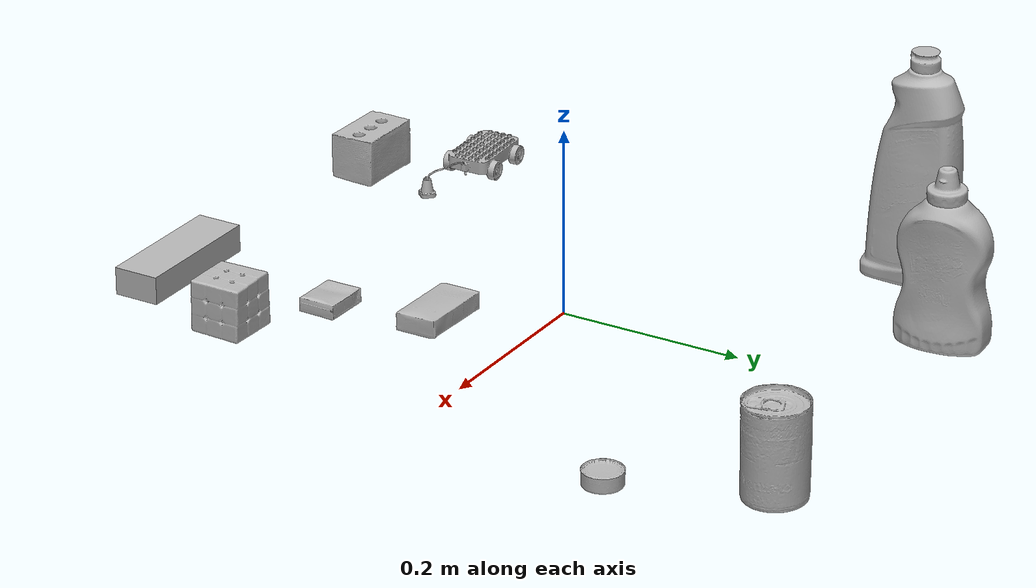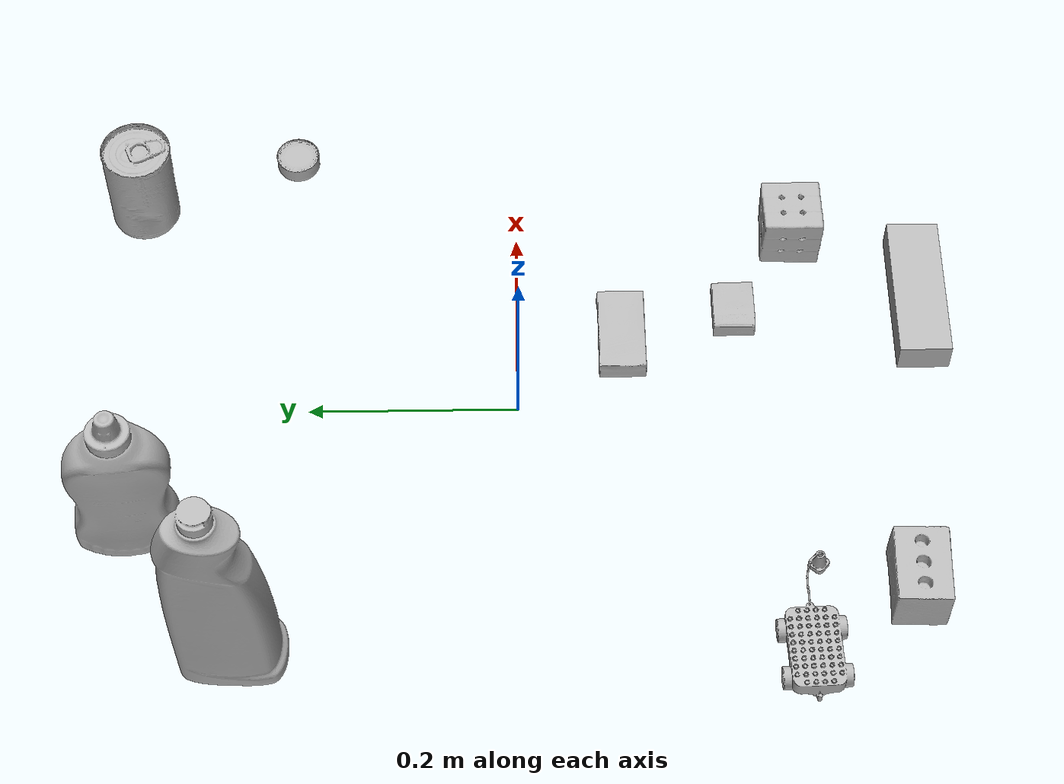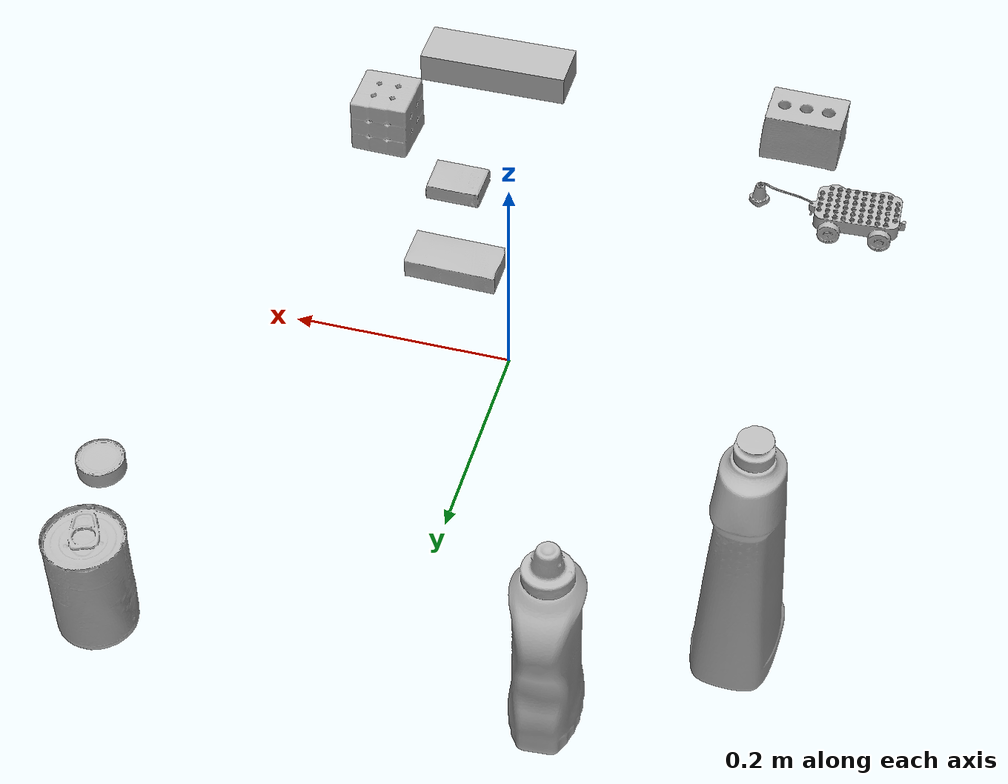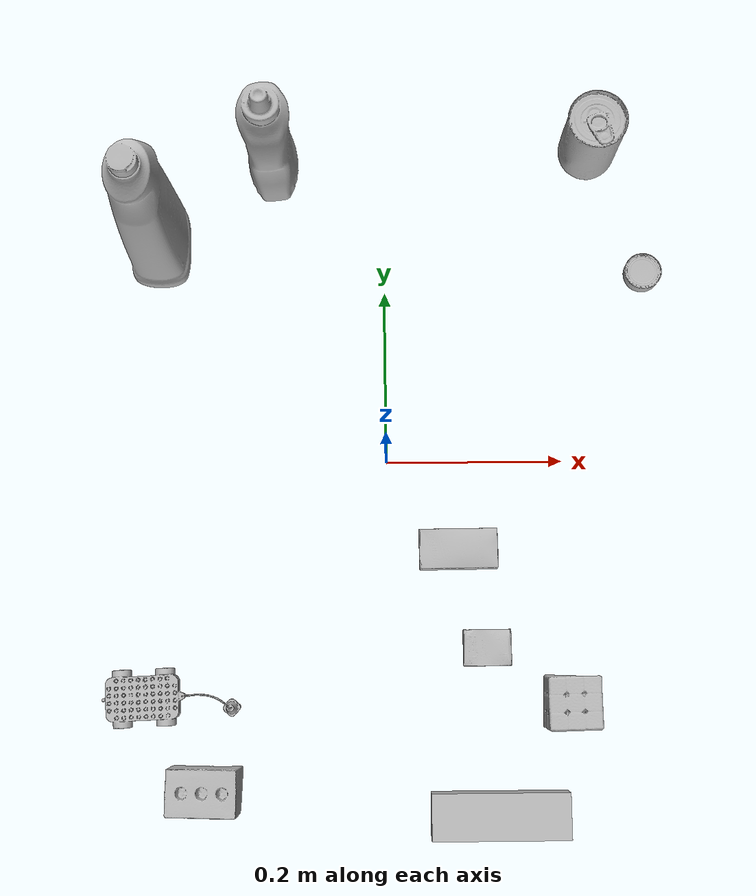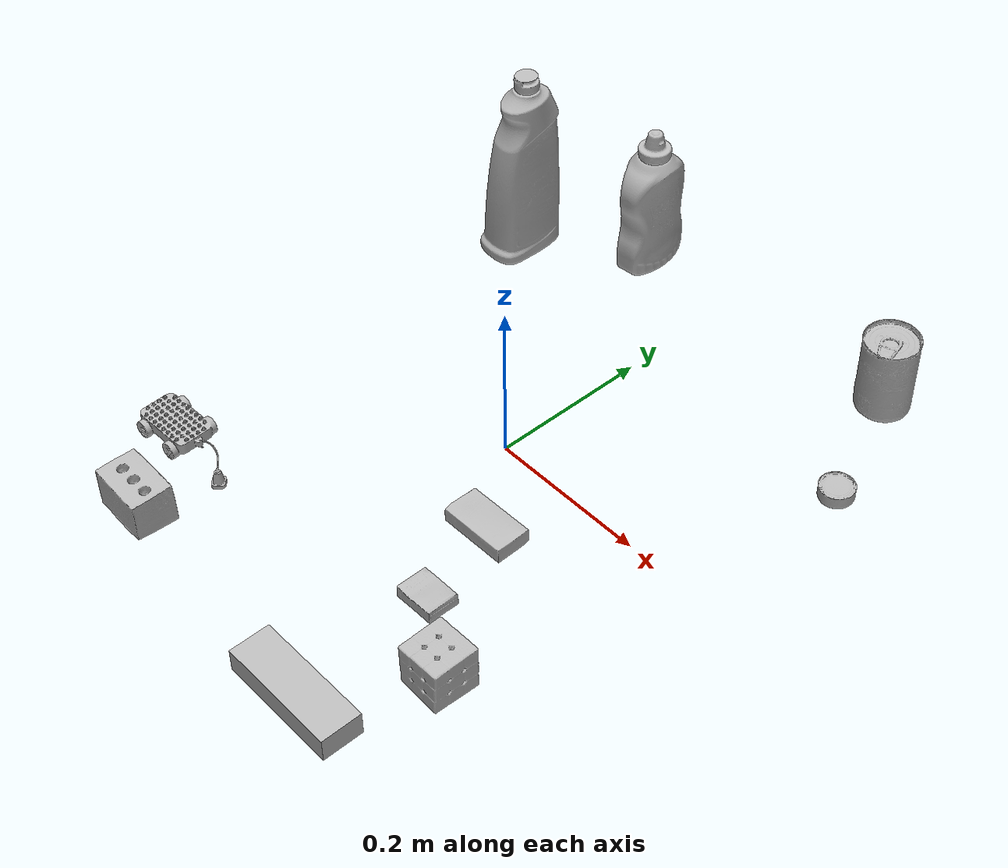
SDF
<?xml version="1.0" ?>
<sdf version="1.4">
  <world name="default">
    <light name="light1" type="point">
      <pose>0 0 1 0 0 0</pose>
      <diffuse>3 3 3 1</diffuse>
      <specular>3 3 3 1</specular>
    </light>
    <light name="light2" type="point">
      <pose>0 0.5 2 0 0 0</pose>
      <diffuse>1 1 1 1</diffuse>
      <specular>1 1 1 1</specular>
    </light>
    <light name="light3" type="point">
      <pose>0 0.5 2 0 0 0</pose>
      <diffuse>3 3 3 1</diffuse>
      <specular>3 3 3 1</specular>
    </light>
    <scene>
      <ambient>0.7 0.7 0.7</ambient>
    </scene>
    <model name="bottle1">
      <link name="link_bottle1">
        <collision name="default">
          <geometry>
            <mesh>
              <uri>model://bleach_cleanser/collision_meshes/collision.obj</uri>
              <scale>1.0 1.0 1.0</scale>
            </mesh>
          </geometry>
          <surface>
            <friction>
              <ode>
                <mu>0.5</mu>
                <mu2>0.5</mu2>
              </ode>
            </friction>
          </surface>
        </collision>
        <visual name="default">
          <geometry>
            <mesh>
              <uri>model://bleach_cleanser/visual_meshes/visual.dae</uri>
              <scale>1.0 1.0 1.0</scale>
            </mesh>
          </geometry>
        </visual>
        <inertial>
          <mass>1.2697166204452515</mass>
          <pose>0.00012193183647468686 0.003783883061259985 -0.02442161738872528 -0.07381670616315505 0.00042011510954057825 -0.0068750724928957506</pose>
          <inertia>
            <ixx>0.0061798943</ixx>
            <iyy>0.0057587572</iyy>
            <izz>0.0010566014</izz>
            <ixy>0</ixy>
            <ixz>0</ixz>
            <iyz>0</iyz>
          </inertia>
        </inertial>
      </link>
      <pose>-0.2598317563533783 0.2598607540130615 0.12578421831130981 -0.00020526324639732503 1.1878603807095203e-05 -0.013354069546375915</pose>
    </model>
    <model name="bottle2">
      <link name="link_bottle2">
        <collision name="default">
          <geometry>
            <mesh>
              <uri>model://mustard_bottle/collision_meshes/collision.obj</uri>
              <scale>1.0 1.0 1.0</scale>
            </mesh>
          </geometry>
          <surface>
            <friction>
              <ode>
                <mu>0.5</mu>
                <mu2>0.5</mu2>
              </ode>
            </friction>
          </surface>
        </collision>
        <visual name="default">
          <geometry>
            <mesh>
              <uri>model://mustard_bottle/visual_meshes/visual.dae</uri>
              <scale>1.0 1.0 1.0</scale>
            </mesh>
          </geometry>
        </visual>
        <inertial>
          <mass>0.7653017640113831</mass>
          <pose>0.000503245391882956 -0.00015647402324248105 -0.01747579500079155 0.0004182327658992807 0.0009465785893850277 0.024853714910462506</pose>
          <inertia>
            <ixx>0.0021251384</ixx>
            <iyy>0.0018646289</iyy>
            <izz>0.0005600813</izz>
            <ixy>0</ixy>
            <ixz>0</ixz>
            <iyz>0</iyz>
          </inertia>
        </inertial>
      </link>
      <pose>-0.13076108694076538 0.3597590923309326 0.09615199267864227 1.3273018211881367e-05 1.4551971329679461e-05 0.07881725724370076</pose>
    </model>
    <model name="toy1">
      <link name="link_toy1">
        <collision name="default">
          <geometry>
            <mesh>
              <uri>model://g_lego_duplo/collision_meshes/collision.obj</uri>
              <scale>0.5 0.5 0.5</scale>
            </mesh>
          </geometry>
          <surface>
            <friction>
              <ode>
                <mu>0.5</mu>
                <mu2>0.5</mu2>
              </ode>
            </friction>
          </surface>
        </collision>
        <visual name="default">
          <geometry>
            <mesh>
              <uri>model://g_lego_duplo/visual_meshes/visual.dae</uri>
              <scale>0.5 0.5 0.5</scale>
            </mesh>
          </geometry>
        </visual>
        <inertial>
          <mass>0.058442164212465286</mass>
          <pose>-0.025023842230439186 0.0008777315961197019 0.0019403378246352077 0.010962970283690966 0.0381082459421261 -0.09653034831594848</pose>
          <inertia>
            <ixx>2.1170836e-05</ixx>
            <iyy>6.4006235e-05</iyy>
            <izz>8.007422e-05</izz>
            <ixy>0</ixy>
            <ixz>0</ixz>
            <iyz>0</iyz>
          </inertia>
        </inertial>
      </link>
      <pose>-0.23957829177379608 -0.2618411183357239 0.014996832236647606 -6.198758167944936e-05 -0.003688328968005515 0.037527009774523494</pose>
    </model>
    <model name="toy2">
      <link name="link_toy2">
        <collision name="default">
          <geometry>
            <mesh>
              <uri>model://foam_brick/collision_meshes/collision.obj</uri>
              <scale>1.0 1.0 1.0</scale>
            </mesh>
          </geometry>
          <surface>
            <friction>
              <ode>
                <mu>0.5</mu>
                <mu2>0.5</mu2>
              </ode>
            </friction>
          </surface>
        </collision>
        <visual name="default">
          <geometry>
            <mesh>
              <uri>model://foam_brick/visual_meshes/visual.dae</uri>
              <scale>1.0 1.0 1.0</scale>
            </mesh>
          </geometry>
        </visual>
        <inertial>
          <mass>0.20487983524799347</mass>
          <pose>-0.0002522472059354186 0.0003458437859080732 -0.0002532101352699101 -0.2940200921298176 0.01727444945267686 -0.0007449878655710941</pose>
          <inertia>
            <ixx>8.9495355e-05</ixx>
            <iyy>0.0001428839</iyy>
            <izz>0.00014469978</izz>
            <ixy>0</ixy>
            <ixz>0</ixz>
            <iyz>0</iyz>
          </inertia>
        </inertial>
      </link>
      <pose>-0.19975629448890686 -0.3606002628803253 0.0259175393730402 0.013817562215463432 0.004276821971822236 -0.029549057047507328</pose>
    </model>
    <model name="can1">
      <link name="link_can1">
        <collision name="default">
          <geometry>
            <mesh>
              <uri>model://tuna_fish_can/collision_meshes/collision.obj</uri>
              <scale>0.5 0.5 0.5</scale>
            </mesh>
          </geometry>
          <surface>
            <friction>
              <ode>
                <mu>0.5</mu>
                <mu2>0.5</mu2>
              </ode>
            </friction>
          </surface>
        </collision>
        <visual name="default">
          <geometry>
            <mesh>
              <uri>model://tuna_fish_can/visual_meshes/visual.dae</uri>
              <scale>0.5 0.5 0.5</scale>
            </mesh>
          </geometry>
        </visual>
        <inertial>
          <mass>0.012491201050579548</mass>
          <pose>-2.036202567978762e-05 -7.256427124957554e-06 -0.0005269025568850338 -0.0017944782936896576 0.0001716245920406042 0.24054207470378652</pose>
          <inertia>
            <ixx>1.6888293e-06</ixx>
            <iyy>1.6817903e-06</iyy>
            <izz>2.889828e-06</izz>
            <ixy>0</ixy>
            <ixz>0</ixz>
            <iyz>0</iyz>
          </inertia>
        </inertial>
      </link>
      <pose>0.29997527599334717 0.220023050904274 0.00851999968290329 1.2334484780522406e-10 -3.105357674638783e-08 -0.011107031889412762</pose>
    </model>
    <model name="can2">
      <link name="link_can2">
        <collision name="default">
          <geometry>
            <mesh>
              <uri>model://tomato_soup_can/collision_meshes/collision.obj</uri>
              <scale>1.0 1.0 1.0</scale>
            </mesh>
          </geometry>
          <surface>
            <friction>
              <ode>
                <mu>0.5</mu>
                <mu2>0.5</mu2>
              </ode>
            </friction>
          </surface>
        </collision>
        <visual name="default">
          <geometry>
            <mesh>
              <uri>model://tomato_soup_can/visual_meshes/visual.dae</uri>
              <scale>1.0 1.0 1.0</scale>
            </mesh>
          </geometry>
        </visual>
        <inertial>
          <mass>0.1827235370874405</mass>
          <pose>0.00012652271834667772 0.00010805515921674669 -0.0017973986687138677 0.007020070640758328 0.00042299385100205743 -0.009903366123441316</pose>
          <inertia>
            <ixx>0.00020034082</ixx>
            <iyy>0.00019918295</iyy>
            <izz>0.00010383482</izz>
            <ixy>0</ixy>
            <ixz>0</ixz>
            <iyz>0</iyz>
          </inertia>
        </inertial>
      </link>
      <pose>0.23994599282741547 0.36999717354774475 0.05127398669719696 -5.833695746395945e-07 -7.847728714089707e-07 0.08966873869743346</pose>
    </model>
    <model name="box1">
      <link name="link_box1">
        <collision name="default">
          <geometry>
            <mesh>
              <uri>model://jenga/collision_meshes/collision.obj</uri>
              <scale>1.0 1.0 1.0</scale>
            </mesh>
          </geometry>
          <surface>
            <friction>
              <ode>
                <mu>0.5</mu>
                <mu2>0.5</mu2>
              </ode>
            </friction>
          </surface>
        </collision>
        <visual name="default">
          <geometry>
            <mesh>
              <uri>model://jenga/visual_meshes/visual.dae</uri>
              <scale>1.0 1.0 1.0</scale>
            </mesh>
          </geometry>
        </visual>
        <inertial>
          <mass>0.23032541573047638</mass>
          <pose>-2.502855807051674e-07 -0.00010250010382151231 -4.0923401684267446e-05 0.0 -7.342154049184251e-07 0.0</pose>
          <inertia>
            <ixx>6.3736625e-05</ixx>
            <iyy>0.00043187768</iyy>
            <izz>0.00046106614</izz>
            <ixy>0</ixy>
            <ixz>0</ixz>
            <iyz>0</iyz>
          </inertia>
        </inertial>
      </link>
      <pose>0.1200004443526268 -0.38989749550819397 0.014999995008111 5.577798631907959e-10 2.1140071339815267e-10 -1.3860237402235332e-07</pose>
    </model>
    <model name="box2">
      <link name="link_box2">
        <collision name="default">
          <geometry>
            <mesh>
              <uri>model://cracker_box/collision_meshes/collision.obj</uri>
              <scale>0.25 0.25 0.25</scale>
            </mesh>
          </geometry>
          <surface>
            <friction>
              <ode>
                <mu>0.5</mu>
                <mu2>0.5</mu2>
              </ode>
            </friction>
          </surface>
        </collision>
        <visual name="default">
          <geometry>
            <mesh>
              <uri>model://cracker_box/visual_meshes/visual.dae</uri>
              <scale>0.25 0.25 0.25</scale>
            </mesh>
          </geometry>
        </visual>
        <inertial>
          <mass>0.037928901612758636</mass>
          <pose>0.0002366034168517217 6.358561222441494e-05 -0.000425738311605528 -0.00031620771242973385 -0.011106489600347247 0.002546794536796529</pose>
          <inertia>
            <ixx>6.029637e-06</ixx>
            <iyy>9.956116e-06</iyy>
            <izz>1.420829e-05</izz>
            <ixy>0</ixy>
            <ixz>0</ixz>
            <iyz>0</iyz>
          </inertia>
        </inertial>
      </link>
      <pose>0.10993338376283646 -0.20984996855258942 0.009120451286435127 -0.011788914550587544 -0.007366515260040836 0.00012844504987506185</pose>
    </model>
    <model name="box3">
      <link name="link_box3">
        <collision name="default">
          <geometry>
            <mesh>
              <uri>model://sugar_box/collision_meshes/collision.obj</uri>
              <scale>0.5 0.5 0.5</scale>
            </mesh>
          </geometry>
          <surface>
            <friction>
              <ode>
                <mu>0.5</mu>
                <mu2>0.5</mu2>
              </ode>
            </friction>
          </surface>
        </collision>
        <visual name="default">
          <geometry>
            <mesh>
              <uri>model://sugar_box/visual_meshes/visual.dae</uri>
              <scale>0.5 0.5 0.5</scale>
            </mesh>
          </geometry>
        </visual>
        <inertial>
          <mass>0.11577744781970978</mass>
          <pose>0.0005171863595023751 1.9245549992774613e-05 -0.00018182402709499002 -0.0004046260967602003 0.0010506636382171825 0.002615378323343388</pose>
          <inertia>
            <ixx>2.4116362e-05</ixx>
            <iyy>7.7949044e-05</iyy>
            <izz>9.3314295e-05</izz>
            <ixy>0</ixy>
            <ixz>0</ixz>
            <iyz>0</iyz>
          </inertia>
        </inertial>
      </link>
      <pose>0.0795227512717247 -0.10013342648744583 0.011399304494261742 0.0007749358332533792 -0.02343319709162745 0.0002346680002281115</pose>
    </model>
    <model name="box4">
      <link name="link_box4">
        <collision name="default">
          <geometry>
            <mesh>
              <uri>model://rubiks_cube/collision_meshes/collision.obj</uri>
              <scale>1.0 1.0 1.0</scale>
            </mesh>
          </geometry>
          <surface>
            <friction>
              <ode>
                <mu>0.5</mu>
                <mu2>0.5</mu2>
              </ode>
            </friction>
          </surface>
        </collision>
        <visual name="default">
          <geometry>
            <mesh>
              <uri>model://rubiks_cube/visual_meshes/visual.dae</uri>
              <scale>1.0 1.0 1.0</scale>
            </mesh>
          </geometry>
        </visual>
        <inertial>
          <mass>0.277982622385025</mass>
          <pose>2.6721041649580002e-05 5.2569666877388954e-05 -7.264316082000732e-06 -0.05467259342135701 -0.09814005995908277 -0.03445491653702878</pose>
          <inertia>
            <ixx>0.00015360407</ixx>
            <iyy>0.00015288773</iyy>
            <izz>0.00015487692</izz>
            <ixy>0</ixy>
            <ixz>0</ixz>
            <iyz>0</iyz>
          </inertia>
        </inertial>
      </link>
      <pose>0.1999315321445465 -0.27022746205329895 0.028679009526968002 -2.933665616827176e-08 1.944135859276775e-08 1.4761461019435097e-07</pose>
    </model>
  </world>
</sdf>
